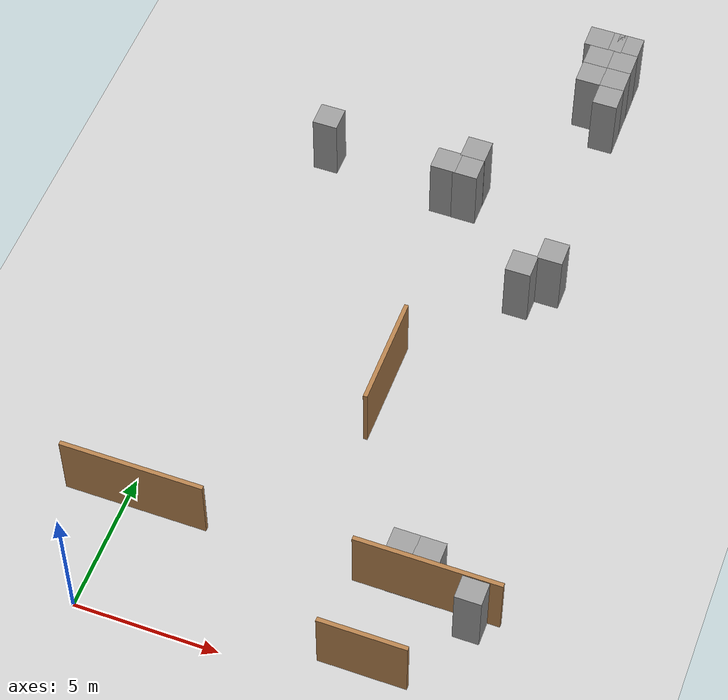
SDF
<sdf version="1.7">
 <world name="default">
  <model name="ground_plane">
   <static>1</static>
   <link name="link">
    <collision name="collision">
     <geometry><plane><normal>0 0 1</normal><size>100 100</size></plane></geometry>
     <surface><friction><ode><mu>100</mu><mu2>50</mu2></ode></friction></surface>
    </collision>
    <visual name="visual">
     <cast_shadows>0</cast_shadows>
     <geometry><plane><normal>0 0 1</normal><size>100 100</size></plane></geometry>
     <material>
      <script><uri>file://media/materials/scripts/gazebo.material</uri><name>Gazebo/Grey</name></script>
     </material>
    </visual>
   </link>
  </model>
  <model name="Untitled_0_clone_1">
   <link name="Wall_7_clone_clone">
    <pose>-0.225163 -6.29267 0 0 -0 0</pose>
    <inertial>
     <mass>1</mass>
     <inertia><ixx>1</ixx><ixy>0</ixy><ixz>0</ixz><iyy>1</iyy><iyz>0</iyz><izz>1</izz></inertia>
    </inertial>
    <visual name="Wall_7_Visual">
     <pose>0 0 1.25 0 -0 0</pose>
     <geometry><box><size>3 0.15 2.5</size></box></geometry>
     <material>
      <script><uri>file://media/materials/scripts/gazebo.material</uri><name>Gazebo/Wood</name></script>
      <ambient>1 1 1 1</ambient>
      <shader type="pixel"><normal_map>__default__</normal_map></shader>
      <diffuse>1 1 1 1</diffuse>
      <specular>0.2 0.2 0.2 1</specular>
      <emissive>0 0 0 1</emissive>
     </material>
     <meta><layer>0</layer></meta>
    </visual>
    <collision name="Wall_7_Collision">
     <pose>0 0 1.25 0 -0 0</pose>
     <geometry><box><size>3 0.15 2.5</size></box></geometry>
     <surface>
      <friction>
       <ode><mu>1</mu><mu2>1</mu2><fdir1>0 0 0</fdir1><slip1>0</slip1><slip2>0</slip2></ode>
       <torsional>
        <coefficient>1</coefficient>
        <patch_radius>0</patch_radius>
        <surface_radius>0</surface_radius>
        <use_patch_radius>1</use_patch_radius>
        <ode><slip>0</slip></ode>
       </torsional>
      </friction>
      <bounce><restitution_coefficient>0</restitution_coefficient><threshold>1e+06</threshold></bounce>
      <contact>
       <collide_without_contact>0</collide_without_contact>
       <collide_without_contact_bitmask>1</collide_without_contact_bitmask>
       <collide_bitmask>1</collide_bitmask>
       <ode>
        <soft_cfm>0</soft_cfm>
        <soft_erp>0.2</soft_erp>
        <kp>1e+13</kp>
        <kd>1</kd>
        <max_vel>0.01</max_vel>
        <min_depth>0</min_depth>
       </ode>
       <bullet>
        <split_impulse>1</split_impulse>
        <split_impulse_penetration_threshold>-0.01</split_impulse_penetration_threshold>
        <soft_cfm>0</soft_cfm>
        <soft_erp>0.2</soft_erp>
        <kp>1e+13</kp>
        <kd>1</kd>
       </bullet>
      </contact>
     </surface>
    </collision>
   </link>
   <static>1</static>
   <pose>9.71955 7.19221 0 0 -0 0</pose>
  </model>
  <model name="Untitled_0_clone">
   <link name="Wall_7_clone">
    <pose>-2.04571 -4.92466 0 0 -0 0</pose>
    <inertial>
     <mass>1</mass>
     <inertia><ixx>1</ixx><ixy>0</ixy><ixz>0</ixz><iyy>1</iyy><iyz>0</iyz><izz>1</izz></inertia>
    </inertial>
    <visual name="Wall_7_Visual">
     <pose>0 0 1.25 0 -0 1.5707</pose>
     <geometry><box><size>4 0.15 2.5</size></box></geometry>
     <material>
      <script><uri>file://media/materials/scripts/gazebo.material</uri><name>Gazebo/Wood</name></script>
      <ambient>1 1 1 1</ambient>
      <shader type="pixel"><normal_map>__default__</normal_map></shader>
      <diffuse>1 1 1 1</diffuse>
      <specular>0.2 0.2 0.2 1</specular>
      <emissive>0 0 0 1</emissive>
     </material>
     <meta><layer>0</layer></meta>
    </visual>
    <collision name="Wall_7_Collision">
     <pose>0 0 1.25 0 -0 1.57079</pose>
     <geometry><box><size>4 0.15 2.5</size></box></geometry>
     <surface>
      <friction>
       <ode><mu>1</mu><mu2>1</mu2><fdir1>0 0 0</fdir1><slip1>0</slip1><slip2>0</slip2></ode>
       <torsional>
        <coefficient>1</coefficient>
        <patch_radius>0</patch_radius>
        <surface_radius>0</surface_radius>
        <use_patch_radius>1</use_patch_radius>
        <ode><slip>0</slip></ode>
       </torsional>
      </friction>
      <bounce><restitution_coefficient>0</restitution_coefficient><threshold>1e+06</threshold></bounce>
      <contact>
       <collide_without_contact>0</collide_without_contact>
       <collide_without_contact_bitmask>1</collide_without_contact_bitmask>
       <collide_bitmask>1</collide_bitmask>
       <ode>
        <soft_cfm>0</soft_cfm>
        <soft_erp>0.2</soft_erp>
        <kp>1e+13</kp>
        <kd>1</kd>
        <max_vel>0.01</max_vel>
        <min_depth>0</min_depth>
       </ode>
       <bullet>
        <split_impulse>1</split_impulse>
        <split_impulse_penetration_threshold>-0.01</split_impulse_penetration_threshold>
        <soft_cfm>0</soft_cfm>
        <soft_erp>0.2</soft_erp>
        <kp>1e+13</kp>
        <kd>1</kd>
       </bullet>
      </contact>
     </surface>
    </collision>
   </link>
   <static>1</static>
   <pose>8.55551 16.1176 0 0 -0 0</pose>
  </model>
  <model name="unit_box">
   <link name="link_clone_0_clone_clone_3_clone_0">
    <inertial>
     <mass>1</mass>
     <inertia>
      <ixx>0.166667</ixx>
      <ixy>0</ixy>
      <ixz>0</ixz>
      <iyy>0.166667</iyy>
      <iyz>0</iyz>
      <izz>0.166667</izz>
     </inertia>
    </inertial>
    <pose>1.46921 28.7387 0 0 -0 0</pose>
    <visual name="visual">
     <geometry><box><size>0.9 0.9 4</size></box></geometry>
     <material>
      <script><name>Gazebo/Grey</name><uri>file://media/materials/scripts/gazebo.material</uri></script>
      <shader type="pixel"><normal_map>__default__</normal_map></shader>
      <ambient>0.3 0.3 0.3 1</ambient>
      <diffuse>0.7 0.7 0.7 1</diffuse>
      <specular>0.01 0.01 0.01 1</specular>
      <emissive>0 0 0 1</emissive>
     </material>
    </visual>
    <collision name="collision">
     <geometry><box><size>0.9 0.9 4</size></box></geometry>
     <surface>
      <friction>
       <ode><mu>1</mu><mu2>1</mu2><fdir1>0 0 0</fdir1><slip1>0</slip1><slip2>0</slip2></ode>
       <torsional>
        <coefficient>1</coefficient>
        <patch_radius>0</patch_radius>
        <surface_radius>0</surface_radius>
        <use_patch_radius>1</use_patch_radius>
        <ode><slip>0</slip></ode>
       </torsional>
      </friction>
      <bounce><restitution_coefficient>0</restitution_coefficient><threshold>1e+06</threshold></bounce>
      <contact>
       <collide_without_contact>0</collide_without_contact>
       <collide_without_contact_bitmask>1</collide_without_contact_bitmask>
       <collide_bitmask>1</collide_bitmask>
       <ode>
        <soft_cfm>0</soft_cfm>
        <soft_erp>0.2</soft_erp>
        <kp>1e+13</kp>
        <kd>1</kd>
        <max_vel>0.01</max_vel>
        <min_depth>0</min_depth>
       </ode>
       <bullet>
        <split_impulse>1</split_impulse>
        <split_impulse_penetration_threshold>-0.01</split_impulse_penetration_threshold>
        <soft_cfm>0</soft_cfm>
        <soft_erp>0.2</soft_erp>
        <kp>1e+13</kp>
        <kd>1</kd>
       </bullet>
      </contact>
     </surface>
    </collision>
   </link>
   <link name="link_clone_0_clone_clone_3_clone_1">
    <inertial>
     <mass>1</mass>
     <inertia>
      <ixx>0.166667</ixx>
      <ixy>0</ixy>
      <ixz>0</ixz>
      <iyy>0.166667</iyy>
      <iyz>0</iyz>
      <izz>0.166667</izz>
     </inertia>
    </inertial>
    <pose>1.9538 28.7358 0 0 -0 0</pose>
    <visual name="visual">
     <geometry><box><size>0.9 0.9 4</size></box></geometry>
     <material>
      <script><name>Gazebo/Grey</name><uri>file://media/materials/scripts/gazebo.material</uri></script>
      <shader type="pixel"><normal_map>__default__</normal_map></shader>
      <ambient>0.3 0.3 0.3 1</ambient>
      <diffuse>0.7 0.7 0.7 1</diffuse>
      <specular>0.01 0.01 0.01 1</specular>
      <emissive>0 0 0 1</emissive>
     </material>
    </visual>
    <collision name="collision">
     <geometry><box><size>0.9 0.9 4</size></box></geometry>
     <surface>
      <friction>
       <ode><mu>1</mu><mu2>1</mu2><fdir1>0 0 0</fdir1><slip1>0</slip1><slip2>0</slip2></ode>
       <torsional>
        <coefficient>1</coefficient>
        <patch_radius>0</patch_radius>
        <surface_radius>0</surface_radius>
        <use_patch_radius>1</use_patch_radius>
        <ode><slip>0</slip></ode>
       </torsional>
      </friction>
      <bounce><restitution_coefficient>0</restitution_coefficient><threshold>1e+06</threshold></bounce>
      <contact>
       <collide_without_contact>0</collide_without_contact>
       <collide_without_contact_bitmask>1</collide_without_contact_bitmask>
       <collide_bitmask>1</collide_bitmask>
       <ode>
        <soft_cfm>0</soft_cfm>
        <soft_erp>0.2</soft_erp>
        <kp>1e+13</kp>
        <kd>1</kd>
        <max_vel>0.01</max_vel>
        <min_depth>0</min_depth>
       </ode>
       <bullet>
        <split_impulse>1</split_impulse>
        <split_impulse_penetration_threshold>-0.01</split_impulse_penetration_threshold>
        <soft_cfm>0</soft_cfm>
        <soft_erp>0.2</soft_erp>
        <kp>1e+13</kp>
        <kd>1</kd>
       </bullet>
      </contact>
     </surface>
    </collision>
   </link>
   <link name="link_clone_0_clone_clone_3_clone_2_clone">
    <inertial>
     <mass>1</mass>
     <inertia>
      <ixx>0.166667</ixx>
      <ixy>0</ixy>
      <ixz>0</ixz>
      <iyy>0.166667</iyy>
      <iyz>0</iyz>
      <izz>0.166667</izz>
     </inertia>
    </inertial>
    <pose>2.59172 27.8668 0 0 -0 0</pose>
    <visual name="visual">
     <geometry><box><size>0.9 0.9 4</size></box></geometry>
     <material>
      <script><name>Gazebo/Grey</name><uri>file://media/materials/scripts/gazebo.material</uri></script>
      <shader type="pixel"><normal_map>__default__</normal_map></shader>
      <ambient>0.3 0.3 0.3 1</ambient>
      <diffuse>0.7 0.7 0.7 1</diffuse>
      <specular>0.01 0.01 0.01 1</specular>
      <emissive>0 0 0 1</emissive>
     </material>
    </visual>
    <collision name="collision">
     <geometry><box><size>0.9 0.9 4</size></box></geometry>
     <surface>
      <friction>
       <ode><mu>1</mu><mu2>1</mu2><fdir1>0 0 0</fdir1><slip1>0</slip1><slip2>0</slip2></ode>
       <torsional>
        <coefficient>1</coefficient>
        <patch_radius>0</patch_radius>
        <surface_radius>0</surface_radius>
        <use_patch_radius>1</use_patch_radius>
        <ode><slip>0</slip></ode>
       </torsional>
      </friction>
      <bounce><restitution_coefficient>0</restitution_coefficient><threshold>1e+06</threshold></bounce>
      <contact>
       <collide_without_contact>0</collide_without_contact>
       <collide_without_contact_bitmask>1</collide_without_contact_bitmask>
       <collide_bitmask>1</collide_bitmask>
       <ode>
        <soft_cfm>0</soft_cfm>
        <soft_erp>0.2</soft_erp>
        <kp>1e+13</kp>
        <kd>1</kd>
        <max_vel>0.01</max_vel>
        <min_depth>0</min_depth>
       </ode>
       <bullet>
        <split_impulse>1</split_impulse>
        <split_impulse_penetration_threshold>-0.01</split_impulse_penetration_threshold>
        <soft_cfm>0</soft_cfm>
        <soft_erp>0.2</soft_erp>
        <kp>1e+13</kp>
        <kd>1</kd>
       </bullet>
      </contact>
     </surface>
    </collision>
   </link>
   <link name="link_clone_0_clone_clone_3_clone_2_clone_0">
    <inertial>
     <mass>1</mass>
     <inertia>
      <ixx>0.166667</ixx>
      <ixy>0</ixy>
      <ixz>0</ixz>
      <iyy>0.166667</iyy>
      <iyz>0</iyz>
      <izz>0.166667</izz>
     </inertia>
    </inertial>
    <pose>2.58995 26.9736 0 0 -0 0</pose>
    <visual name="visual">
     <geometry><box><size>0.9 0.9 4</size></box></geometry>
     <material>
      <script><name>Gazebo/Grey</name><uri>file://media/materials/scripts/gazebo.material</uri></script>
      <shader type="pixel"><normal_map>__default__</normal_map></shader>
      <ambient>0.3 0.3 0.3 1</ambient>
      <diffuse>0.7 0.7 0.7 1</diffuse>
      <specular>0.01 0.01 0.01 1</specular>
      <emissive>0 0 0 1</emissive>
     </material>
    </visual>
    <collision name="collision">
     <geometry><box><size>0.9 0.9 4</size></box></geometry>
     <surface>
      <friction>
       <ode><mu>1</mu><mu2>1</mu2><fdir1>0 0 0</fdir1><slip1>0</slip1><slip2>0</slip2></ode>
       <torsional>
        <coefficient>1</coefficient>
        <patch_radius>0</patch_radius>
        <surface_radius>0</surface_radius>
        <use_patch_radius>1</use_patch_radius>
        <ode><slip>0</slip></ode>
       </torsional>
      </friction>
      <bounce><restitution_coefficient>0</restitution_coefficient><threshold>1e+06</threshold></bounce>
      <contact>
       <collide_without_contact>0</collide_without_contact>
       <collide_without_contact_bitmask>1</collide_without_contact_bitmask>
       <collide_bitmask>1</collide_bitmask>
       <ode>
        <soft_cfm>0</soft_cfm>
        <soft_erp>0.2</soft_erp>
        <kp>1e+13</kp>
        <kd>1</kd>
        <max_vel>0.01</max_vel>
        <min_depth>0</min_depth>
       </ode>
       <bullet>
        <split_impulse>1</split_impulse>
        <split_impulse_penetration_threshold>-0.01</split_impulse_penetration_threshold>
        <soft_cfm>0</soft_cfm>
        <soft_erp>0.2</soft_erp>
        <kp>1e+13</kp>
        <kd>1</kd>
       </bullet>
      </contact>
     </surface>
    </collision>
   </link>
   <link name="link_clone_0_clone_clone_3_clone_2_clone_1">
    <inertial>
     <mass>1</mass>
     <inertia>
      <ixx>0.166667</ixx>
      <ixy>0</ixy>
      <ixz>0</ixz>
      <iyy>0.166667</iyy>
      <iyz>0</iyz>
      <izz>0.166667</izz>
     </inertia>
    </inertial>
    <pose>2.59589 26.0894 0 0 -0 0</pose>
    <visual name="visual">
     <geometry><box><size>0.9 0.9 4</size></box></geometry>
     <material>
      <script><name>Gazebo/Grey</name><uri>file://media/materials/scripts/gazebo.material</uri></script>
      <shader type="pixel"><normal_map>__default__</normal_map></shader>
      <ambient>0.3 0.3 0.3 1</ambient>
      <diffuse>0.7 0.7 0.7 1</diffuse>
      <specular>0.01 0.01 0.01 1</specular>
      <emissive>0 0 0 1</emissive>
     </material>
    </visual>
    <collision name="collision">
     <geometry><box><size>0.9 0.9 4</size></box></geometry>
     <surface>
      <friction>
       <ode><mu>1</mu><mu2>1</mu2><fdir1>0 0 0</fdir1><slip1>0</slip1><slip2>0</slip2></ode>
       <torsional>
        <coefficient>1</coefficient>
        <patch_radius>0</patch_radius>
        <surface_radius>0</surface_radius>
        <use_patch_radius>1</use_patch_radius>
        <ode><slip>0</slip></ode>
       </torsional>
      </friction>
      <bounce><restitution_coefficient>0</restitution_coefficient><threshold>1e+06</threshold></bounce>
      <contact>
       <collide_without_contact>0</collide_without_contact>
       <collide_without_contact_bitmask>1</collide_without_contact_bitmask>
       <collide_bitmask>1</collide_bitmask>
       <ode>
        <soft_cfm>0</soft_cfm>
        <soft_erp>0.2</soft_erp>
        <kp>1e+13</kp>
        <kd>1</kd>
        <max_vel>0.01</max_vel>
        <min_depth>0</min_depth>
       </ode>
       <bullet>
        <split_impulse>1</split_impulse>
        <split_impulse_penetration_threshold>-0.01</split_impulse_penetration_threshold>
        <soft_cfm>0</soft_cfm>
        <soft_erp>0.2</soft_erp>
        <kp>1e+13</kp>
        <kd>1</kd>
       </bullet>
      </contact>
     </surface>
    </collision>
   </link>
   <link name="link_clone_0_clone_clone_3_clone_2_clone_12">
    <inertial>
     <mass>1</mass>
     <inertia>
      <ixx>0.166667</ixx>
      <ixy>0</ixy>
      <ixz>0</ixz>
      <iyy>0.166667</iyy>
      <iyz>0</iyz>
      <izz>0.166667</izz>
     </inertia>
    </inertial>
    <pose>-1.03565 22.0898 0 0 -0 0</pose>
    <visual name="visual">
     <geometry><box><size>0.9 0.9 4</size></box></geometry>
     <material>
      <script><name>Gazebo/Grey</name><uri>file://media/materials/scripts/gazebo.material</uri></script>
      <shader type="pixel"><normal_map>__default__</normal_map></shader>
      <ambient>0.3 0.3 0.3 1</ambient>
      <diffuse>0.7 0.7 0.7 1</diffuse>
      <specular>0.01 0.01 0.01 1</specular>
      <emissive>0 0 0 1</emissive>
     </material>
    </visual>
    <collision name="collision">
     <geometry><box><size>0.9 0.9 4</size></box></geometry>
     <surface>
      <friction>
       <ode><mu>1</mu><mu2>1</mu2><fdir1>0 0 0</fdir1><slip1>0</slip1><slip2>0</slip2></ode>
       <torsional>
        <coefficient>1</coefficient>
        <patch_radius>0</patch_radius>
        <surface_radius>0</surface_radius>
        <use_patch_radius>1</use_patch_radius>
        <ode><slip>0</slip></ode>
       </torsional>
      </friction>
      <bounce><restitution_coefficient>0</restitution_coefficient><threshold>1e+06</threshold></bounce>
      <contact>
       <collide_without_contact>0</collide_without_contact>
       <collide_without_contact_bitmask>1</collide_without_contact_bitmask>
       <collide_bitmask>1</collide_bitmask>
       <ode>
        <soft_cfm>0</soft_cfm>
        <soft_erp>0.2</soft_erp>
        <kp>1e+13</kp>
        <kd>1</kd>
        <max_vel>0.01</max_vel>
        <min_depth>0</min_depth>
       </ode>
       <bullet>
        <split_impulse>1</split_impulse>
        <split_impulse_penetration_threshold>-0.01</split_impulse_penetration_threshold>
        <soft_cfm>0</soft_cfm>
        <soft_erp>0.2</soft_erp>
        <kp>1e+13</kp>
        <kd>1</kd>
       </bullet>
      </contact>
     </surface>
    </collision>
   </link>
   <link name="link_clone_0_clone_clone_3_clone_2_clone_13">
    <inertial>
     <mass>1</mass>
     <inertia>
      <ixx>0.166667</ixx>
      <ixy>0</ixy>
      <ixz>0</ixz>
      <iyy>0.166667</iyy>
      <iyz>0</iyz>
      <izz>0.166667</izz>
     </inertia>
    </inertial>
    <pose>-1.04307 21.2327 0 0 -0 0</pose>
    <visual name="visual">
     <geometry><box><size>0.9 0.9 4</size></box></geometry>
     <material>
      <script><name>Gazebo/Grey</name><uri>file://media/materials/scripts/gazebo.material</uri></script>
      <shader type="pixel"><normal_map>__default__</normal_map></shader>
      <ambient>0.3 0.3 0.3 1</ambient>
      <diffuse>0.7 0.7 0.7 1</diffuse>
      <specular>0.01 0.01 0.01 1</specular>
      <emissive>0 0 0 1</emissive>
     </material>
    </visual>
    <collision name="collision">
     <geometry><box><size>0.9 0.9 4</size></box></geometry>
     <surface>
      <friction>
       <ode><mu>1</mu><mu2>1</mu2><fdir1>0 0 0</fdir1><slip1>0</slip1><slip2>0</slip2></ode>
       <torsional>
        <coefficient>1</coefficient>
        <patch_radius>0</patch_radius>
        <surface_radius>0</surface_radius>
        <use_patch_radius>1</use_patch_radius>
        <ode><slip>0</slip></ode>
       </torsional>
      </friction>
      <bounce><restitution_coefficient>0</restitution_coefficient><threshold>1e+06</threshold></bounce>
      <contact>
       <collide_without_contact>0</collide_without_contact>
       <collide_without_contact_bitmask>1</collide_without_contact_bitmask>
       <collide_bitmask>1</collide_bitmask>
       <ode>
        <soft_cfm>0</soft_cfm>
        <soft_erp>0.2</soft_erp>
        <kp>1e+13</kp>
        <kd>1</kd>
        <max_vel>0.01</max_vel>
        <min_depth>0</min_depth>
       </ode>
       <bullet>
        <split_impulse>1</split_impulse>
        <split_impulse_penetration_threshold>-0.01</split_impulse_penetration_threshold>
        <soft_cfm>0</soft_cfm>
        <soft_erp>0.2</soft_erp>
        <kp>1e+13</kp>
        <kd>1</kd>
       </bullet>
      </contact>
     </surface>
    </collision>
   </link>
   <link name="link_clone_0_clone_clone_3_clone_2_clone_14">
    <inertial>
     <mass>1</mass>
     <inertia>
      <ixx>0.166667</ixx>
      <ixy>0</ixy>
      <ixz>0</ixz>
      <iyy>0.166667</iyy>
      <iyz>0</iyz>
      <izz>0.166667</izz>
     </inertia>
    </inertial>
    <pose>-1.86101 21.2404 0 0 -0 0</pose>
    <visual name="visual">
     <geometry><box><size>0.9 0.9 4</size></box></geometry>
     <material>
      <script><name>Gazebo/Grey</name><uri>file://media/materials/scripts/gazebo.material</uri></script>
      <shader type="pixel"><normal_map>__default__</normal_map></shader>
      <ambient>0.3 0.3 0.3 1</ambient>
      <diffuse>0.7 0.7 0.7 1</diffuse>
      <specular>0.01 0.01 0.01 1</specular>
      <emissive>0 0 0 1</emissive>
     </material>
    </visual>
    <collision name="collision">
     <geometry><box><size>0.9 0.9 4</size></box></geometry>
     <surface>
      <friction>
       <ode><mu>1</mu><mu2>1</mu2><fdir1>0 0 0</fdir1><slip1>0</slip1><slip2>0</slip2></ode>
       <torsional>
        <coefficient>1</coefficient>
        <patch_radius>0</patch_radius>
        <surface_radius>0</surface_radius>
        <use_patch_radius>1</use_patch_radius>
        <ode><slip>0</slip></ode>
       </torsional>
      </friction>
      <bounce><restitution_coefficient>0</restitution_coefficient><threshold>1e+06</threshold></bounce>
      <contact>
       <collide_without_contact>0</collide_without_contact>
       <collide_without_contact_bitmask>1</collide_without_contact_bitmask>
       <collide_bitmask>1</collide_bitmask>
       <ode>
        <soft_cfm>0</soft_cfm>
        <soft_erp>0.2</soft_erp>
        <kp>1e+13</kp>
        <kd>1</kd>
        <max_vel>0.01</max_vel>
        <min_depth>0</min_depth>
       </ode>
       <bullet>
        <split_impulse>1</split_impulse>
        <split_impulse_penetration_threshold>-0.01</split_impulse_penetration_threshold>
        <soft_cfm>0</soft_cfm>
        <soft_erp>0.2</soft_erp>
        <kp>1e+13</kp>
        <kd>1</kd>
       </bullet>
      </contact>
     </surface>
    </collision>
   </link>
   <link name="link_clone_0_clone_clone_3_clone_2_clone_2">
    <inertial>
     <mass>1</mass>
     <inertia>
      <ixx>0.166667</ixx>
      <ixy>0</ixy>
      <ixz>0</ixz>
      <iyy>0.166667</iyy>
      <iyz>0</iyz>
      <izz>0.166667</izz>
     </inertia>
    </inertial>
    <pose>1.70355 27.8505 0 0 -0 0</pose>
    <visual name="visual">
     <geometry><box><size>0.9 0.9 4</size></box></geometry>
     <material>
      <script><name>Gazebo/Grey</name><uri>file://media/materials/scripts/gazebo.material</uri></script>
      <shader type="pixel"><normal_map>__default__</normal_map></shader>
      <ambient>0.3 0.3 0.3 1</ambient>
      <diffuse>0.7 0.7 0.7 1</diffuse>
      <specular>0.01 0.01 0.01 1</specular>
      <emissive>0 0 0 1</emissive>
     </material>
    </visual>
    <collision name="collision">
     <geometry><box><size>0.9 0.9 4</size></box></geometry>
     <surface>
      <friction>
       <ode><mu>1</mu><mu2>1</mu2><fdir1>0 0 0</fdir1><slip1>0</slip1><slip2>0</slip2></ode>
       <torsional>
        <coefficient>1</coefficient>
        <patch_radius>0</patch_radius>
        <surface_radius>0</surface_radius>
        <use_patch_radius>1</use_patch_radius>
        <ode><slip>0</slip></ode>
       </torsional>
      </friction>
      <bounce><restitution_coefficient>0</restitution_coefficient><threshold>1e+06</threshold></bounce>
      <contact>
       <collide_without_contact>0</collide_without_contact>
       <collide_without_contact_bitmask>1</collide_without_contact_bitmask>
       <collide_bitmask>1</collide_bitmask>
       <ode>
        <soft_cfm>0</soft_cfm>
        <soft_erp>0.2</soft_erp>
        <kp>1e+13</kp>
        <kd>1</kd>
        <max_vel>0.01</max_vel>
        <min_depth>0</min_depth>
       </ode>
       <bullet>
        <split_impulse>1</split_impulse>
        <split_impulse_penetration_threshold>-0.01</split_impulse_penetration_threshold>
        <soft_cfm>0</soft_cfm>
        <soft_erp>0.2</soft_erp>
        <kp>1e+13</kp>
        <kd>1</kd>
       </bullet>
      </contact>
     </surface>
    </collision>
   </link>
   <link name="link_clone_0_clone_clone_3_clone_2_clone_3">
    <inertial>
     <mass>1</mass>
     <inertia>
      <ixx>0.166667</ixx>
      <ixy>0</ixy>
      <ixz>0</ixz>
      <iyy>0.166667</iyy>
      <iyz>0</iyz>
      <izz>0.166667</izz>
     </inertia>
    </inertial>
    <pose>1.70338 26.953 0 0 -0 0</pose>
    <visual name="visual">
     <geometry><box><size>0.9 0.9 4</size></box></geometry>
     <material>
      <script><name>Gazebo/Grey</name><uri>file://media/materials/scripts/gazebo.material</uri></script>
      <shader type="pixel"><normal_map>__default__</normal_map></shader>
      <ambient>0.3 0.3 0.3 1</ambient>
      <diffuse>0.7 0.7 0.7 1</diffuse>
      <specular>0.01 0.01 0.01 1</specular>
      <emissive>0 0 0 1</emissive>
     </material>
    </visual>
    <collision name="collision">
     <geometry><box><size>0.9 0.9 4</size></box></geometry>
     <surface>
      <friction>
       <ode><mu>1</mu><mu2>1</mu2><fdir1>0 0 0</fdir1><slip1>0</slip1><slip2>0</slip2></ode>
       <torsional>
        <coefficient>1</coefficient>
        <patch_radius>0</patch_radius>
        <surface_radius>0</surface_radius>
        <use_patch_radius>1</use_patch_radius>
        <ode><slip>0</slip></ode>
       </torsional>
      </friction>
      <bounce><restitution_coefficient>0</restitution_coefficient><threshold>1e+06</threshold></bounce>
      <contact>
       <collide_without_contact>0</collide_without_contact>
       <collide_without_contact_bitmask>1</collide_without_contact_bitmask>
       <collide_bitmask>1</collide_bitmask>
       <ode>
        <soft_cfm>0</soft_cfm>
        <soft_erp>0.2</soft_erp>
        <kp>1e+13</kp>
        <kd>1</kd>
        <max_vel>0.01</max_vel>
        <min_depth>0</min_depth>
       </ode>
       <bullet>
        <split_impulse>1</split_impulse>
        <split_impulse_penetration_threshold>-0.01</split_impulse_penetration_threshold>
        <soft_cfm>0</soft_cfm>
        <soft_erp>0.2</soft_erp>
        <kp>1e+13</kp>
        <kd>1</kd>
       </bullet>
      </contact>
     </surface>
    </collision>
   </link>
   <link name="link_clone_0_clone_clone_3_clone_2_clone_50">
    <inertial>
     <mass>1</mass>
     <inertia>
      <ixx>0.166667</ixx>
      <ixy>0</ixy>
      <ixz>0</ixz>
      <iyy>0.166667</iyy>
      <iyz>0</iyz>
      <izz>0.166667</izz>
     </inertia>
    </inertial>
    <pose>2.0531 17.7761 0 0 -0 0</pose>
    <visual name="visual">
     <geometry><box><size>0.9 0.9 4</size></box></geometry>
     <material>
      <script><name>Gazebo/Grey</name><uri>file://media/materials/scripts/gazebo.material</uri></script>
      <shader type="pixel"><normal_map>__default__</normal_map></shader>
      <ambient>0.3 0.3 0.3 1</ambient>
      <diffuse>0.7 0.7 0.7 1</diffuse>
      <specular>0.01 0.01 0.01 1</specular>
      <emissive>0 0 0 1</emissive>
     </material>
    </visual>
    <collision name="collision">
     <geometry><box><size>0.9 0.9 4</size></box></geometry>
     <surface>
      <friction>
       <ode><mu>1</mu><mu2>1</mu2><fdir1>0 0 0</fdir1><slip1>0</slip1><slip2>0</slip2></ode>
       <torsional>
        <coefficient>1</coefficient>
        <patch_radius>0</patch_radius>
        <surface_radius>0</surface_radius>
        <use_patch_radius>1</use_patch_radius>
        <ode><slip>0</slip></ode>
       </torsional>
      </friction>
      <bounce><restitution_coefficient>0</restitution_coefficient><threshold>1e+06</threshold></bounce>
      <contact>
       <collide_without_contact>0</collide_without_contact>
       <collide_without_contact_bitmask>1</collide_without_contact_bitmask>
       <collide_bitmask>1</collide_bitmask>
       <ode>
        <soft_cfm>0</soft_cfm>
        <soft_erp>0.2</soft_erp>
        <kp>1e+13</kp>
        <kd>1</kd>
        <max_vel>0.01</max_vel>
        <min_depth>0</min_depth>
       </ode>
       <bullet>
        <split_impulse>1</split_impulse>
        <split_impulse_penetration_threshold>-0.01</split_impulse_penetration_threshold>
        <soft_cfm>0</soft_cfm>
        <soft_erp>0.2</soft_erp>
        <kp>1e+13</kp>
        <kd>1</kd>
       </bullet>
      </contact>
     </surface>
    </collision>
   </link>
   <link name="link_clone_0_clone_clone_3_clone_2_clone_51">
    <inertial>
     <mass>1</mass>
     <inertia>
      <ixx>0.166667</ixx>
      <ixy>0</ixy>
      <ixz>0</ixz>
      <iyy>0.166667</iyy>
      <iyz>0</iyz>
      <izz>0.166667</izz>
     </inertia>
    </inertial>
    <pose>2.91295 18.6319 0 0 -0 0</pose>
    <visual name="visual">
     <geometry><box><size>0.9 0.9 4</size></box></geometry>
     <material>
      <script><name>Gazebo/Grey</name><uri>file://media/materials/scripts/gazebo.material</uri></script>
      <shader type="pixel"><normal_map>__default__</normal_map></shader>
      <ambient>0.3 0.3 0.3 1</ambient>
      <diffuse>0.7 0.7 0.7 1</diffuse>
      <specular>0.01 0.01 0.01 1</specular>
      <emissive>0 0 0 1</emissive>
     </material>
    </visual>
    <collision name="collision">
     <geometry><box><size>0.9 0.9 4</size></box></geometry>
     <surface>
      <friction>
       <ode><mu>1</mu><mu2>1</mu2><fdir1>0 0 0</fdir1><slip1>0</slip1><slip2>0</slip2></ode>
       <torsional>
        <coefficient>1</coefficient>
        <patch_radius>0</patch_radius>
        <surface_radius>0</surface_radius>
        <use_patch_radius>1</use_patch_radius>
        <ode><slip>0</slip></ode>
       </torsional>
      </friction>
      <bounce><restitution_coefficient>0</restitution_coefficient><threshold>1e+06</threshold></bounce>
      <contact>
       <collide_without_contact>0</collide_without_contact>
       <collide_without_contact_bitmask>1</collide_without_contact_bitmask>
       <collide_bitmask>1</collide_bitmask>
       <ode>
        <soft_cfm>0</soft_cfm>
        <soft_erp>0.2</soft_erp>
        <kp>1e+13</kp>
        <kd>1</kd>
        <max_vel>0.01</max_vel>
        <min_depth>0</min_depth>
       </ode>
       <bullet>
        <split_impulse>1</split_impulse>
        <split_impulse_penetration_threshold>-0.01</split_impulse_penetration_threshold>
        <soft_cfm>0</soft_cfm>
        <soft_erp>0.2</soft_erp>
        <kp>1e+13</kp>
        <kd>1</kd>
       </bullet>
      </contact>
     </surface>
    </collision>
   </link>
   <link name="link_clone_0_clone_clone_3_clone_2_clone_8">
    <inertial>
     <mass>1</mass>
     <inertia>
      <ixx>0.166667</ixx>
      <ixy>0</ixy>
      <ixz>0</ixz>
      <iyy>0.166667</iyy>
      <iyz>0</iyz>
      <izz>0.166667</izz>
     </inertia>
    </inertial>
    <pose>-6.47961 21.7241 0 0 -0 0</pose>
    <visual name="visual">
     <geometry><box><size>0.9 0.9 4</size></box></geometry>
     <material>
      <script><name>Gazebo/Grey</name><uri>file://media/materials/scripts/gazebo.material</uri></script>
      <shader type="pixel"><normal_map>__default__</normal_map></shader>
      <ambient>0.3 0.3 0.3 1</ambient>
      <diffuse>0.7 0.7 0.7 1</diffuse>
      <specular>0.01 0.01 0.01 1</specular>
      <emissive>0 0 0 1</emissive>
     </material>
    </visual>
    <collision name="collision">
     <geometry><box><size>0.9 0.9 4</size></box></geometry>
     <surface>
      <friction>
       <ode><mu>1</mu><mu2>1</mu2><fdir1>0 0 0</fdir1><slip1>0</slip1><slip2>0</slip2></ode>
       <torsional>
        <coefficient>1</coefficient>
        <patch_radius>0</patch_radius>
        <surface_radius>0</surface_radius>
        <use_patch_radius>1</use_patch_radius>
        <ode><slip>0</slip></ode>
       </torsional>
      </friction>
      <bounce><restitution_coefficient>0</restitution_coefficient><threshold>1e+06</threshold></bounce>
      <contact>
       <collide_without_contact>0</collide_without_contact>
       <collide_without_contact_bitmask>1</collide_without_contact_bitmask>
       <collide_bitmask>1</collide_bitmask>
       <ode>
        <soft_cfm>0</soft_cfm>
        <soft_erp>0.2</soft_erp>
        <kp>1e+13</kp>
        <kd>1</kd>
        <max_vel>0.01</max_vel>
        <min_depth>0</min_depth>
       </ode>
       <bullet>
        <split_impulse>1</split_impulse>
        <split_impulse_penetration_threshold>-0.01</split_impulse_penetration_threshold>
        <soft_cfm>0</soft_cfm>
        <soft_erp>0.2</soft_erp>
        <kp>1e+13</kp>
        <kd>1</kd>
       </bullet>
      </contact>
     </surface>
    </collision>
   </link>
   <link name="link_clone_0_clone_clone_3_clone_clone">
    <inertial>
     <mass>1</mass>
     <inertia>
      <ixx>0.166667</ixx>
      <ixy>0</ixy>
      <ixz>0</ixz>
      <iyy>0.166667</iyy>
      <iyz>0</iyz>
      <izz>0.166667</izz>
     </inertia>
    </inertial>
    <pose>2.58484 28.7379 0 0 -0 0</pose>
    <visual name="visual">
     <geometry><box><size>0.9 0.9 4</size></box></geometry>
     <material>
      <script><name>Gazebo/Grey</name><uri>file://media/materials/scripts/gazebo.material</uri></script>
      <shader type="pixel"><normal_map>__default__</normal_map></shader>
      <ambient>0.3 0.3 0.3 1</ambient>
      <diffuse>0.7 0.7 0.7 1</diffuse>
      <specular>0.01 0.01 0.01 1</specular>
      <emissive>0 0 0 1</emissive>
     </material>
    </visual>
    <collision name="collision">
     <geometry><box><size>0.9 0.9 4</size></box></geometry>
     <surface>
      <friction>
       <ode><mu>1</mu><mu2>1</mu2><fdir1>0 0 0</fdir1><slip1>0</slip1><slip2>0</slip2></ode>
       <torsional>
        <coefficient>1</coefficient>
        <patch_radius>0</patch_radius>
        <surface_radius>0</surface_radius>
        <use_patch_radius>1</use_patch_radius>
        <ode><slip>0</slip></ode>
       </torsional>
      </friction>
      <bounce><restitution_coefficient>0</restitution_coefficient><threshold>1e+06</threshold></bounce>
      <contact>
       <collide_without_contact>0</collide_without_contact>
       <collide_without_contact_bitmask>1</collide_without_contact_bitmask>
       <collide_bitmask>1</collide_bitmask>
       <ode>
        <soft_cfm>0</soft_cfm>
        <soft_erp>0.2</soft_erp>
        <kp>1e+13</kp>
        <kd>1</kd>
        <max_vel>0.01</max_vel>
        <min_depth>0</min_depth>
       </ode>
       <bullet>
        <split_impulse>1</split_impulse>
        <split_impulse_penetration_threshold>-0.01</split_impulse_penetration_threshold>
        <soft_cfm>0</soft_cfm>
        <soft_erp>0.2</soft_erp>
        <kp>1e+13</kp>
        <kd>1</kd>
       </bullet>
      </contact>
     </surface>
    </collision>
   </link>
   <static>0</static>
   <pose>7.51627 -1.49726 0.45 0 -0 0</pose>
  </model>
  <model name="Untitled_0_clone_2_clone">
   <pose>0.64336 9.933 0 0 -0 0</pose>
   <link name="Wall_7">
    <collision name="Wall_7_Collision">
     <geometry><box><size>5 0.15 2.5</size></box></geometry>
     <pose>0 0 1.25 0 -0 0</pose>
    </collision>
    <visual name="Wall_7_Visual">
     <pose>0 0 1.25 0 -0 0</pose>
     <geometry><box><size>5 0.15 2.5</size></box></geometry>
     <material>
      <script><uri>file://media/materials/scripts/gazebo.material</uri><name>Gazebo/Wood</name></script>
      <ambient>1 1 1 1</ambient>
     </material>
     <meta><layer>0</layer></meta>
    </visual>
    <pose>-0.2375 -5.8475 0 0 -0 0</pose>
   </link>
   <static>1</static>
  </model>
  <model name="unit_box_clone">
   <link name="link_clone_0_clone_clone_3_clone_2_clone_1_clone">
    <inertial>
     <mass>1</mass>
     <inertia>
      <ixx>0.166667</ixx>
      <ixy>0</ixy>
      <ixz>0</ixz>
      <iyy>0.166667</iyy>
      <iyz>0</iyz>
      <izz>0.166667</izz>
     </inertia>
    </inertial>
    <pose>19.5699 23.4812 0 0 -0 0</pose>
    <visual name="visual">
     <geometry><box><size>0.9 0.9 4</size></box></geometry>
     <material>
      <script><name>Gazebo/Grey</name><uri>file://media/materials/scripts/gazebo.material</uri></script>
      <shader type="pixel"><normal_map>__default__</normal_map></shader>
      <ambient>0.3 0.3 0.3 1</ambient>
      <diffuse>0.7 0.7 0.7 1</diffuse>
      <specular>0.01 0.01 0.01 1</specular>
      <emissive>0 0 0 1</emissive>
     </material>
    </visual>
    <collision name="collision">
     <geometry><box><size>0.9 0.9 4</size></box></geometry>
     <surface>
      <friction>
       <ode><mu>1</mu><mu2>1</mu2><fdir1>0 0 0</fdir1><slip1>0</slip1><slip2>0</slip2></ode>
       <torsional>
        <coefficient>1</coefficient>
        <patch_radius>0</patch_radius>
        <surface_radius>0</surface_radius>
        <use_patch_radius>1</use_patch_radius>
        <ode><slip>0</slip></ode>
       </torsional>
      </friction>
      <bounce><restitution_coefficient>0</restitution_coefficient><threshold>1e+06</threshold></bounce>
      <contact>
       <collide_without_contact>0</collide_without_contact>
       <collide_without_contact_bitmask>1</collide_without_contact_bitmask>
       <collide_bitmask>1</collide_bitmask>
       <ode>
        <soft_cfm>0</soft_cfm>
        <soft_erp>0.2</soft_erp>
        <kp>1e+13</kp>
        <kd>1</kd>
        <max_vel>0.01</max_vel>
        <min_depth>0</min_depth>
       </ode>
       <bullet>
        <split_impulse>1</split_impulse>
        <split_impulse_penetration_threshold>-0.01</split_impulse_penetration_threshold>
        <soft_cfm>0</soft_cfm>
        <soft_erp>0.2</soft_erp>
        <kp>1e+13</kp>
        <kd>1</kd>
       </bullet>
      </contact>
     </surface>
    </collision>
   </link>
   <link name="link_clone_0_clone_clone_3_clone_2_clone_1_clone_1">
    <inertial>
     <mass>1</mass>
     <inertia>
      <ixx>0.166667</ixx>
      <ixy>0</ixy>
      <ixz>0</ixz>
      <iyy>0.166667</iyy>
      <iyz>0</iyz>
      <izz>0.166667</izz>
     </inertia>
    </inertial>
    <pose>17.8601 24.3072 0 0 -0 0</pose>
    <visual name="visual">
     <geometry><box><size>0.9 0.9 4</size></box></geometry>
     <material>
      <script><name>Gazebo/Grey</name><uri>file://media/materials/scripts/gazebo.material</uri></script>
      <shader type="pixel"><normal_map>__default__</normal_map></shader>
      <ambient>0.3 0.3 0.3 1</ambient>
      <diffuse>0.7 0.7 0.7 1</diffuse>
      <specular>0.01 0.01 0.01 1</specular>
      <emissive>0 0 0 1</emissive>
     </material>
    </visual>
    <collision name="collision">
     <geometry><box><size>0.9 0.9 4</size></box></geometry>
     <surface>
      <friction>
       <ode><mu>1</mu><mu2>1</mu2><fdir1>0 0 0</fdir1><slip1>0</slip1><slip2>0</slip2></ode>
       <torsional>
        <coefficient>1</coefficient>
        <patch_radius>0</patch_radius>
        <surface_radius>0</surface_radius>
        <use_patch_radius>1</use_patch_radius>
        <ode><slip>0</slip></ode>
       </torsional>
      </friction>
      <bounce><restitution_coefficient>0</restitution_coefficient><threshold>1e+06</threshold></bounce>
      <contact>
       <collide_without_contact>0</collide_without_contact>
       <collide_without_contact_bitmask>1</collide_without_contact_bitmask>
       <collide_bitmask>1</collide_bitmask>
       <ode>
        <soft_cfm>0</soft_cfm>
        <soft_erp>0.2</soft_erp>
        <kp>1e+13</kp>
        <kd>1</kd>
        <max_vel>0.01</max_vel>
        <min_depth>0</min_depth>
       </ode>
       <bullet>
        <split_impulse>1</split_impulse>
        <split_impulse_penetration_threshold>-0.01</split_impulse_penetration_threshold>
        <soft_cfm>0</soft_cfm>
        <soft_erp>0.2</soft_erp>
        <kp>1e+13</kp>
        <kd>1</kd>
       </bullet>
      </contact>
     </surface>
    </collision>
   </link>
   <link name="link_clone_0_clone_clone_3_clone_2_clone_1_clone_2">
    <inertial>
     <mass>1</mass>
     <inertia>
      <ixx>0.166667</ixx>
      <ixy>0</ixy>
      <ixz>0</ixz>
      <iyy>0.166667</iyy>
      <iyz>0</iyz>
      <izz>0.166667</izz>
     </inertia>
    </inertial>
    <pose>16.9798 24.307 0 0 -0 0</pose>
    <visual name="visual">
     <geometry><box><size>0.9 0.9 4</size></box></geometry>
     <material>
      <script><name>Gazebo/Grey</name><uri>file://media/materials/scripts/gazebo.material</uri></script>
      <shader type="pixel"><normal_map>__default__</normal_map></shader>
      <ambient>0.3 0.3 0.3 1</ambient>
      <diffuse>0.7 0.7 0.7 1</diffuse>
      <specular>0.01 0.01 0.01 1</specular>
      <emissive>0 0 0 1</emissive>
     </material>
    </visual>
    <collision name="collision">
     <geometry><box><size>0.9 0.9 4</size></box></geometry>
     <surface>
      <friction>
       <ode><mu>1</mu><mu2>1</mu2><fdir1>0 0 0</fdir1><slip1>0</slip1><slip2>0</slip2></ode>
       <torsional>
        <coefficient>1</coefficient>
        <patch_radius>0</patch_radius>
        <surface_radius>0</surface_radius>
        <use_patch_radius>1</use_patch_radius>
        <ode><slip>0</slip></ode>
       </torsional>
      </friction>
      <bounce><restitution_coefficient>0</restitution_coefficient><threshold>1e+06</threshold></bounce>
      <contact>
       <collide_without_contact>0</collide_without_contact>
       <collide_without_contact_bitmask>1</collide_without_contact_bitmask>
       <collide_bitmask>1</collide_bitmask>
       <ode>
        <soft_cfm>0</soft_cfm>
        <soft_erp>0.2</soft_erp>
        <kp>1e+13</kp>
        <kd>1</kd>
        <max_vel>0.01</max_vel>
        <min_depth>0</min_depth>
       </ode>
       <bullet>
        <split_impulse>1</split_impulse>
        <split_impulse_penetration_threshold>-0.01</split_impulse_penetration_threshold>
        <soft_cfm>0</soft_cfm>
        <soft_erp>0.2</soft_erp>
        <kp>1e+13</kp>
        <kd>1</kd>
       </bullet>
      </contact>
     </surface>
    </collision>
   </link>
   <static>0</static>
   <pose>-7.42908 -19.9148 0.45 0 -0 0.00027</pose>
  </model>
  <model name="Untitled_0_clone_0_clone">
   <link name="Wall_7_clone">
    <pose>-0.782619 -6.23912 0 0 -0 0</pose>
    <visual name="Wall_7_Visual">
     <pose>0 0 1.25 0 -0 0</pose>
     <geometry><box><size>5 0.15 2.5</size></box></geometry>
     <material>
      <script><uri>file://media/materials/scripts/gazebo.material</uri><name>Gazebo/Wood</name></script>
      <ambient>1 1 1 1</ambient>
      <shader type="pixel"/>
     </material>
     <meta><layer>0</layer></meta>
    </visual>
    <collision name="Wall_7_Collision">
     <pose>0 0 1.25 0 -0 0</pose>
     <geometry><box><size>5 0.15 2.5</size></box></geometry>
     <surface>
      <friction>
       <ode><mu>1</mu><mu2>1</mu2><fdir1>0 0 0</fdir1><slip1>0</slip1><slip2>0</slip2></ode>
       <torsional>
        <coefficient>1</coefficient>
        <patch_radius>0</patch_radius>
        <surface_radius>0</surface_radius>
        <use_patch_radius>1</use_patch_radius>
        <ode><slip>0</slip></ode>
       </torsional>
      </friction>
      <bounce><restitution_coefficient>0</restitution_coefficient><threshold>1e+06</threshold></bounce>
      <contact>
       <collide_without_contact>0</collide_without_contact>
       <collide_without_contact_bitmask>1</collide_without_contact_bitmask>
       <collide_bitmask>1</collide_bitmask>
       <ode>
        <soft_cfm>0</soft_cfm>
        <soft_erp>0.2</soft_erp>
        <kp>1e+13</kp>
        <kd>1</kd>
        <max_vel>0.01</max_vel>
        <min_depth>0</min_depth>
       </ode>
       <bullet>
        <split_impulse>1</split_impulse>
        <split_impulse_penetration_threshold>-0.01</split_impulse_penetration_threshold>
        <soft_cfm>0</soft_cfm>
        <soft_erp>0.2</soft_erp>
        <kp>1e+13</kp>
        <kd>1</kd>
       </bullet>
      </contact>
     </surface>
    </collision>
   </link>
   <static>1</static>
   <pose>11.2957 10.25 0 0 -0 0</pose>
  </model>
 </world>
</sdf>
